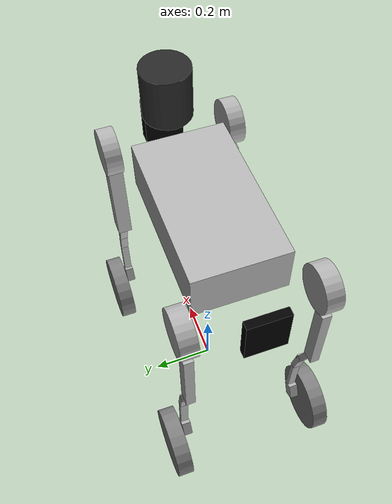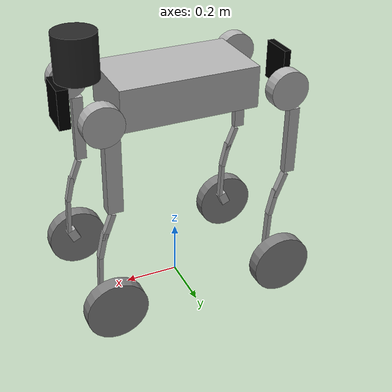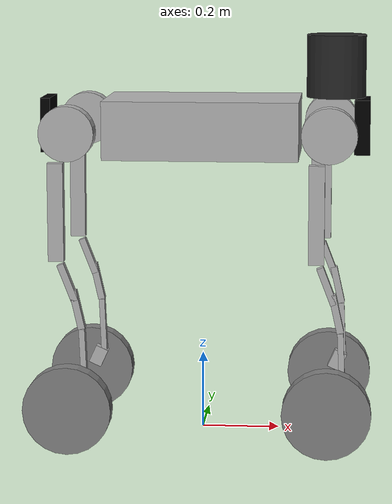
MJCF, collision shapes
<mujoco model="b2w">
  <compiler angle="radian" meshdir="assets" autolimits="true" />

  <default>
    <default class="b2">
      <geom type="mesh" />
      <joint damping="1" armature="0.1" />
      <default class="visual">
        <geom contype="0" conaffinity="0" group="2" />
      </default>
      <default class="collision">
        <geom group="3" mass="0" density="0" />
      </default>
      <site size="0.001" rgba="0.5 0.5 0.5 0.3" group="4" />
    </default>
  </default>

  <asset>
    <mesh name="base_link" file="base_link.obj" />
    <mesh name="logo_left" file="logo_left.obj" />
    <mesh name="logo_right" file="logo_right.obj" />
    <mesh name="unitree_ladar" file="unitree_ladar.obj" />
    <mesh name="f_dc_link" file="f_dc_link.obj" />
    <mesh name="r_dc_link" file="r_dc_link.obj" />
    <mesh name="fake_imu_link" file="fake_imu_link.STL" />
    <mesh name="fake_head_Link" file="fake_head_Link.STL" />
    <mesh name="fake_tail_link" file="fake_tail_link.STL" />
    <mesh name="FL_hip" file="FL_hip.obj" />
    <mesh name="FL_thigh" file="FL_thigh.obj" />
    <mesh name="FL_thigh_protect" file="FL_thigh_protect.obj" />
    <mesh name="FL_calf" file="FL_calf.STL" />
    <mesh name="FL_foot" file="FL_foot.obj" />
    <mesh name="FR_hip" file="FR_hip.obj" />
    <mesh name="FR_thigh" file="FR_thigh.obj" />
    <mesh name="FR_thigh_protect" file="FR_thigh_protect.obj" />
    <mesh name="FR_calf" file="FR_calf.STL" />
    <mesh name="FR_foot" file="FR_foot.obj" />
    <mesh name="RL_hip" file="RL_hip.obj" />
    <mesh name="RL_thigh" file="RL_thigh.obj" />
    <mesh name="RL_thigh_protect" file="RL_thigh_protect.obj" />
    <mesh name="RL_calf" file="RL_calf.STL" />
    <mesh name="RL_foot" file="RL_foot.obj" />
    <mesh name="RR_hip" file="RR_hip.obj" />
    <mesh name="RR_thigh" file="RR_thigh.obj" />
    <mesh name="RR_thigh_protect" file="RR_thigh_protect.obj" />
    <mesh name="RR_calf" file="RR_calf.STL" />
    <mesh name="RR_foot" file="RR_foot.obj" />

    <mesh name="FR_wheel" file="FR_wheel.STL" />
    <mesh name="FL_wheel" file="FL_wheel.STL" />
    <mesh name="RR_wheel" file="RR_wheel.STL" />
    <mesh name="RL_wheel" file="RL_wheel.STL" />

    <mesh name="f_oc_link" file="f_oc_link.obj" />
    <mesh name="r_oc_link" file="r_oc_link.obj" />
  </asset>
  <worldbody>
    <body name="base_link" pos="0 0 0.8" childclass="b2">
      <inertial pos="0.0212868 0.0045819 0.0106169" quat="0.00178111 0.675412 -0.000262894 0.737438"
        mass="40.8426" diaginertia="1.73786 1.66448 0.343734" />
      <joint name="floating_base_joint" type="free" />
      <geom type="mesh" contype="0" conaffinity="0" group="1" density="0" rgba="0.7 0.7 0.7 1"
        mesh="base_link" />
      <geom name="base_collision" size="0.25 0.14 0.075" type="box"
        rgba="0.7 0.7 0.7 1" class="collision" />
      <geom type="mesh" contype="0" conaffinity="0" group="1" density="0" rgba="1 1 1 1"
        mesh="logo_left" />
      <geom type="mesh" contype="0" conaffinity="0" group="1" density="0" rgba="1 1 1 1"
        mesh="logo_right" />
      <geom pos="0.34218 0 0.17851" type="mesh" contype="0" conaffinity="0" group="1" density="0"
        rgba="0.15 0.15 0.15 1" mesh="unitree_ladar" />
      <geom name="lidar_collision" size="0.076 0.08" pos="0.34218 0 0.15851"
        type="cylinder" rgba="0.15 0.15 0.15 1" class="collision" />
      <geom pos="0.841724 -4.57659e-06 0.130379" quat="0.00244632 3.13845e-06 0.999997 1.29099e-06"
        type="mesh" contype="0" conaffinity="0" group="1" density="0" rgba="0 0 0 1"
        mesh="f_dc_link" />
      <geom pos="-0.378319 0.000200109 -0.379902" quat="-1.30076e-06 -0.708662 5.35065e-07 0.705548"
        type="mesh" contype="0" conaffinity="0" group="1" density="0" rgba="0 0 0 1"
        mesh="r_dc_link" />
      <geom pos="0 -0.02341 0.04927" type="mesh" contype="0" conaffinity="0" group="1" density="0"
        rgba="0 0 0 1" mesh="fake_imu_link" />
      <geom type="mesh" contype="0" conaffinity="0" group="1" density="0" rgba="0 0 0 1"
        mesh="fake_head_Link" />
      <geom name="head_collision" size="0.02 0.06 0.07" pos="0.41 0 0.005"
        type="box" rgba="0 0 0 1" class="collision" />
      <geom type="mesh" contype="0" conaffinity="0" group="1" density="0" rgba="0 0 0 1"
        mesh="fake_tail_link" />
      <geom name="tail_collision" size="0.0125 0.06 0.07" pos="-0.405 0 0.005"
        type="box" rgba="0 0 0 1" class="collision" />
      <geom pos="0.84158 -0.0134347 -0.0134347" quat="-3.89602e-06 1.29867e-06 0.707107 -0.707107"
        type="mesh" contype="0" conaffinity="0" group="1" density="0" rgba="0 0 0 1"
        mesh="f_oc_link" />
      <geom pos="-0.00451008 0.0252504 -0.0262476"
        quat="0.707107 -0.707107 -1.29867e-06 -1.29867e-06" type="mesh" contype="0" conaffinity="0"
        group="1" density="0" rgba="0 0 0 1" mesh="r_oc_link" />
      <site name="imu" pos="0 -0.02341 0.04927" />
      <body name="FL_hip" pos="0.3285 0.072 0">
        <inertial pos="-0.00829923 -0.00998502 0.000235465"
          quat="0.525168 0.518964 0.477213 0.476595" mass="2.5294"
          diaginertia="0.00485541 0.00370618 0.00277182" />
        <joint name="FL_hip_joint" pos="0 0 0" axis="1 0 0" range="-0.87 0.87" />
        <geom type="mesh" contype="0" conaffinity="0" group="1" density="0" rgba="0.7 0.7 0.7 1"
          mesh="FL_hip" />
        <geom name="FL_hip_collision" size="0.07 0.025" pos="0 0.12 0"
          quat="0.707107 0.707107 0 0" type="cylinder" rgba="0.7 0.7 0.7 1"
          class="collision" />
        <body name="FL_thigh" pos="0 0.11973 0">
          <inertial pos="-0.00418663 -0.0366068 -0.0432737"
            quat="0.884916 0.0880602 -0.00896728 0.457262" mass="7.4554"
            diaginertia="0.085057 0.0842843 0.0112538" />
          <joint name="FL_thigh_joint" pos="0 0 0" axis="0 1 0" range="-0.94 4.69" />
          <geom type="mesh" contype="0" conaffinity="0" group="1" density="0" rgba="0.7 0.7 0.7 1"
            mesh="FL_thigh" />
          <geom name="FL_thigh_collision" size="0.16 0.02225 0.027"
            pos="-0.025 0 -0.16" quat="0.707388 0 0.706825 0" type="box"
            rgba="0.7 0.7 0.7 1" class="collision" />
          <geom type="mesh" contype="0" conaffinity="0" group="1" density="0"
            rgba="0.65 0.68 0.65 1" mesh="FL_thigh_protect" />
          <body name="FL_calf" pos="0 -8.6984e-05 -0.35">
            <inertial pos="0.0096848 1.25758e-05 -0.158987"
              quat="0.70753 -0.00625821 -0.00634277 0.706627" mass="0.679123"
              diaginertia="0.0162494 0.0161173 0.000398115" />
            <joint name="FL_calf_joint" pos="0 0 0" axis="0 1 0" range="-2.82 -0.43" />
            <geom type="mesh" contype="0" conaffinity="0" group="1" density="0" rgba="0.7 0.7 0.7 1"
              mesh="FL_calf" />
            <geom name="FL_calf1_collision" size="0.05 0.01225 0.009"
              pos="-0.002 0 -0.03" quat="0.825336 0 0.564642 0" type="box"
              rgba="0.7 0.7 0.7 1" class="collision" />
            <geom name="FL_calf2_collision" size="0.05 0.01225 0.009"
              pos="0.022 0 -0.1" quat="0.780707 0 0.624897 0" type="box"
              rgba="0.7 0.7 0.7 1" class="collision" />
            <geom name="FL_calf3_collision" size="0.075 0.01225 0.0075"
              pos="0.036 0 -0.225" quat="0.721382 0 0.692537 0" type="box"
              rgba="0.7 0.7 0.7 1" class="collision" />
            <geom name="FL_calf4_collision" size="0.025 0.014 0.0175"
              pos="0.023 0 -0.31" quat="0.540302 0 0.841471 0" type="box"
              rgba="0.7 0.7 0.7 1" class="collision" />
            <body name="FL_wheel_link" pos="0 0 -0.35">
              <inertial pos="-0.00117 0.051576 -0.001334"
                quat="0.661419 0.248219 0.250051 0.662108" mass="0.918"
                diaginertia="0.00611012 0.00328926 0.00319322" />
              <joint name="FL_wheel_joint" pos="0 0 0" axis="0 1 0" />
              <geom type="mesh" rgba="0.15 0.15 0.15 1" mesh="FL_wheel"
                class="visual" />
              <geom name="FL_wheel_collision" pos="0 0.045816 0"
                quat="0.707107 0.707107 0 0" type="cylinder" size="0.113 0.025"
                class="collision" />
              <site name="FL" pos="0 0.045816 0" type="sphere" size="0.113" />
            </body>
          </body>
        </body>
      </body>
      <body name="FR_hip" pos="0.3285 -0.072 0">
        <inertial pos="-0.00829923 0.00998502 0.000235465"
          quat="0.476595 0.477213 0.518964 0.525168" mass="2.5294"
          diaginertia="0.00485541 0.00370618 0.00277182" />
        <joint name="FR_hip_joint" pos="0 0 0" axis="1 0 0" range="-0.87 0.87" />
        <geom type="mesh" contype="0" conaffinity="0" group="1" density="0" rgba="0.7 0.7 0.7 1"
          mesh="FR_hip" />
        <geom name="FR_hip_collision" size="0.07 0.025" pos="0 -0.12 0"
          quat="0.707107 0.707107 0 0" type="cylinder" rgba="0.7 0.7 0.7 1"
          class="collision" />
        <body name="FR_thigh" pos="0 -0.11973 0">
          <inertial pos="-0.00418663 0.0366068 -0.0432737"
            quat="0.457262 -0.00896728 0.0880602 0.884916" mass="7.4554"
            diaginertia="0.085057 0.0842843 0.0112538" />
          <joint name="FR_thigh_joint" pos="0 0 0" axis="0 1 0" range="-0.94 4.69" />
          <geom type="mesh" contype="0" conaffinity="0" group="1" density="0" rgba="0.7 0.7 0.7 1"
            mesh="FR_thigh" />
          <geom name="FR_thigh_collision" size="0.125 0.014 0.02"
            pos="-0.03 0 -0.2" quat="0.707388 0 0.706825 0" type="box"
            rgba="0.7 0.7 0.7 1" class="collision" />
          <geom type="mesh" contype="0" conaffinity="0" group="1" density="0"
            rgba="0.65 0.68 0.65 1" mesh="FR_thigh_protect" />
          <body name="FR_calf" pos="0 8.6986e-05 -0.35">
            <inertial pos="0.0096848 0 -0.158987" quat="0.707079 -0.00630052 -0.00630052 0.707079"
              mass="0.679123" diaginertia="0.0162494 0.0161173 0.000398115" />
            <joint name="FR_calf_joint" pos="0 0 0" axis="0 1 0" range="-2.82 -0.43" />
            <geom type="mesh" contype="0" conaffinity="0" group="1" density="0" rgba="0.7 0.7 0.7 1"
              mesh="FR_calf" />
            <geom name="FR_calf1_collision" size="0.05 0.01225 0.009"
              pos="-0.002 0 -0.03" quat="0.825336 0 0.564642 0" type="box"
              rgba="0.7 0.7 0.7 1" class="collision" />
            <geom name="FR_calf2_collision" size="0.05 0.01225 0.009"
              pos="0.022 0 -0.1" quat="0.780707 0 0.624897 0" type="box"
              rgba="0.7 0.7 0.7 1" class="collision" />
            <geom name="FR_calf3_collision" size="0.075 0.01225 0.0075"
              pos="0.036 0 -0.225" quat="0.721382 0 0.692537 0" type="box"
              rgba="0.7 0.7 0.7 1" class="collision" />
            <geom name="FR_calf4_collision" size="0.025 0.014 0.0175"
              pos="0.023 0 -0.31" quat="0.540302 0 0.841471 0" type="box"
              rgba="0.7 0.7 0.7 1" class="collision" />
            <body name="FR_wheel_link" pos="0 0 -0.35">
              <inertial pos="-0.00117 -0.051576 -0.001334"
                quat="0.661419 0.248219 0.250051 0.662108" mass="0.918"
                diaginertia="0.00611012 0.00328926 0.00319322" />
              <joint name="FR_wheel_joint" pos="0 0 0" axis="0 1 0" />
              <geom type="mesh" rgba="0.15 0.15 0.15 1" mesh="FR_wheel"
                class="visual" />
              <geom name="FR_wheel_collision" pos="0 -0.045816 0"
                quat="0.707107 0.707107 0 0" type="cylinder" size="0.113 0.025"
                class="collision" />
              <site name="FR" pos="0 -0.045816 0" type="sphere" size="0.113" />
            </body>
          </body>
        </body>
      </body>
      <body name="RL_hip" pos="-0.3285 0.072 0">
        <inertial pos="0.00829923 -0.00998502 0.000235465"
          quat="0.477213 0.476595 0.525168 0.518964" mass="2.5294"
          diaginertia="0.00485541 0.00370618 0.00277182" />
        <joint name="RL_hip_joint" pos="0 0 0" axis="1 0 0" range="-0.87 0.87" />
        <geom type="mesh" contype="0" conaffinity="0" group="1" density="0" rgba="0.7 0.7 0.7 1"
          mesh="RL_hip" />
        <geom name="RL_hip_collision" size="0.07 0.025" pos="0 0.12 0"
          quat="0.707107 0.707107 0 0" type="cylinder" rgba="0.7 0.7 0.7 1"
          class="collision" />
        <body name="RL_thigh" pos="0 0.11973 0">
          <inertial pos="-0.00418663 -0.0366068 -0.0432737"
            quat="0.884916 0.0880602 -0.00896728 0.457262" mass="7.4554"
            diaginertia="0.085057 0.0842843 0.0112538" />
          <joint name="RL_thigh_joint" pos="0 0 0" axis="0 1 0" range="-0.94 4.69" />
          <geom type="mesh" contype="0" conaffinity="0" group="1" density="0" rgba="0.7 0.7 0.7 1"
            mesh="RL_thigh" />
          <geom name="RL_thigh_collision" size="0.125 0.014 0.02"
            pos="-0.03 0 -0.2" quat="0.707388 0 0.706825 0" type="box"
            rgba="0.7 0.7 0.7 1" class="collision" />
          <geom type="mesh" contype="0" conaffinity="0" group="1" density="0"
            rgba="0.65 0.68 0.65 1" mesh="RL_thigh_protect" />
          <body name="RL_calf" pos="0 -8.6984e-05 -0.35">
            <inertial pos="0.0096848 1.25758e-05 -0.158987"
              quat="0.70753 -0.00625821 -0.00634277 0.706627" mass="0.679123"
              diaginertia="0.0162494 0.0161173 0.000398115" />
            <joint name="RL_calf_joint" pos="0 0 0" axis="0 1 0" range="-2.82 -0.43" />
            <geom type="mesh" contype="0" conaffinity="0" group="1" density="0" rgba="0.7 0.7 0.7 1"
              mesh="RL_calf" />
            <geom name="RL_calf1_collision" size="0.05 0.01225 0.009"
              pos="-0.002 0 -0.03" quat="0.825336 0 0.564642 0" type="box"
              rgba="0.7 0.7 0.7 1" class="collision" />
            <geom name="RL_calf2_collision" size="0.05 0.01225 0.009"
              pos="0.022 0 -0.1" quat="0.780707 0 0.624897 0" type="box"
              rgba="0.7 0.7 0.7 1" class="collision" />
            <geom name="RL_calf3_collision" size="0.075 0.01225 0.0075"
              pos="0.036 0 -0.225" quat="0.721382 0 0.692537 0" type="box"
              rgba="0.7 0.7 0.7 1" class="collision" />
            <geom name="RL_calf4_collision" size="0.025 0.014 0.0175"
              pos="0.023 0 -0.31" quat="0.540302 0 0.841471 0" type="box"
              rgba="0.7 0.7 0.7 1" class="collision" />
            <body name="RL_wheel_link" pos="0 0 -0.35">
              <inertial pos="-0.00117 0.051576 -0.001334"
                quat="0.661419 0.248219 0.250051 0.662108" mass="0.918"
                diaginertia="0.00611012 0.00328926 0.00319322" />
              <joint name="RL_wheel_joint" pos="0 0 0" axis="0 1 0" />
              <geom type="mesh" rgba="0.15 0.15 0.15 1" mesh="RL_wheel"
                class="visual" />
              <geom name="RL_wheel_collision" pos="0 0.045816 0"
                quat="0.707107 0.707107 0 0" type="cylinder" size="0.113 0.025"
                class="collision" />
              <site name="RL" pos="0 0.045816 0" type="sphere" size="0.113" />
            </body>
          </body>
        </body>
      </body>
      <body name="RR_hip" pos="-0.3285 -0.072 0">
        <inertial pos="0.00829923 -0.00825992 0.000235465" quat="0.524846 0.53164 0.469132 0.470967"
          mass="2.5294" diaginertia="0.0048658 0.00378576 0.00284106" />
        <joint name="RR_hip_joint" pos="0 0 0" axis="1 0 0" range="-0.87 0.87" />
        <geom type="mesh" contype="0" conaffinity="0" group="1" density="0" rgba="0.7 0.7 0.7 1"
          mesh="RR_hip" />
        <geom name="RR_hip_collision" size="0.07 0.025" pos="0 -0.12 0"
          quat="0.707107 0.707107 0 0" type="cylinder" rgba="0.7 0.7 0.7 1"
          class="collision" />
        <body name="RR_thigh" pos="0 -0.11973 0">
          <inertial pos="-0.00418663 0.0366068 -0.0432737"
            quat="0.457262 -0.00896728 0.0880602 0.884916" mass="7.4554"
            diaginertia="0.085057 0.0842843 0.0112538" />
          <joint name="RR_thigh_joint" pos="0 0 0" axis="0 1 0" range="-0.94 4.69" />
          <geom type="mesh" contype="0" conaffinity="0" group="1" density="0" rgba="0.7 0.7 0.7 1"
            mesh="RR_thigh" />
          <geom name="RR_thigh_collision" size="0.125 0.014 0.02"
            pos="-0.03 0 -0.2" quat="0.707388 0 0.706825 0" type="box"
            rgba="0.7 0.7 0.7 1" class="collision" />
          <geom type="mesh" contype="0" conaffinity="0" group="1" density="0"
            rgba="0.65 0.68 0.65 1" mesh="RR_thigh_protect" />
          <body name="RR_calf" pos="0 8.6986e-05 -0.35">
            <inertial pos="0.0096848 -1.25756e-05 -0.158987"
              quat="0.706627 -0.00634277 -0.00625821 0.70753" mass="0.679123"
              diaginertia="0.0162494 0.0161173 0.000398115" />
            <joint name="RR_calf_joint" pos="0 0 0" axis="0 1 0" range="-2.82 -0.43" />
            <geom type="mesh" contype="0" conaffinity="0" group="1" density="0" rgba="0.7 0.7 0.7 1"
              mesh="RR_calf" />
            <geom name="RR_calf1_collision" size="0.05 0.01225 0.009"
              pos="-0.002 0 -0.03" quat="0.825336 0 0.564642 0" type="box"
              rgba="0.7 0.7 0.7 1" class="collision" />
            <geom name="RR_calf2_collision" size="0.05 0.01225 0.009"
              pos="0.022 0 -0.1" quat="0.780707 0 0.624897 0" type="box"
              rgba="0.7 0.7 0.7 1" class="collision" />
            <geom name="RR_calf3_collision" size="0.075 0.01225 0.0075"
              pos="0.036 0 -0.225" quat="0.721382 0 0.692537 0" type="box"
              rgba="0.7 0.7 0.7 1" class="collision" />
            <geom name="RR_calf4_collision" size="0.025 0.014 0.0175"
              pos="0.023 0 -0.31" quat="0.540302 0 0.841471 0" type="box"
              rgba="0.7 0.7 0.7 1" class="collision" />
            <body name="RR_wheel_link" pos="0 0 -0.35">
              <inertial pos="-0.00117 -0.051576 -0.001334"
                quat="0.661419 0.248219 0.250051 0.662108" mass="0.918"
                diaginertia="0.00611012 0.00328926 0.00319322" />
              <joint name="RR_wheel_joint" pos="0 0 0" axis="0 1 0" />
              <geom type="mesh" rgba="0.15 0.15 0.15 1" mesh="RR_wheel"
                class="visual" />
              <geom name="RR_wheel_collision" pos="0 -0.045816 0"
                quat="0.707107 0.707107 0 0" type="cylinder" size="0.113 0.025"
                class="collision" />
              <site name="RR" pos="0 -0.045816 0" type="sphere" size="0.113" />
            </body>
          </body>
        </body>
      </body>
    </body>
  </worldbody>

  <actuator>
    <velocity name="FL_wheel_joint" joint="FL_wheel_joint" kv="1"
      ctrlrange="-50 50" forcerange="-20 20" />
    <velocity name="FR_wheel_joint" joint="FR_wheel_joint" kv="1"
      ctrlrange="-50 50" forcerange="-20 20" />
    <velocity name="RL_wheel_joint" joint="RL_wheel_joint" kv="1"
      ctrlrange="-50 50" forcerange="-20 20" />
    <velocity name="RR_wheel_joint" joint="RR_wheel_joint" kv="1"
      ctrlrange="-50 50" forcerange="-20 20" />
  </actuator>

  <sensor>
    <gyro name="imu_ang_vel" site="imu" />
    <velocimeter name="imu_lin_vel" site="imu" />
    <accelerometer name="imu_lin_acc" site="imu" />
    <subtreeangmom name="root_angmom" body="base_link" />
  </sensor>
</mujoco>
